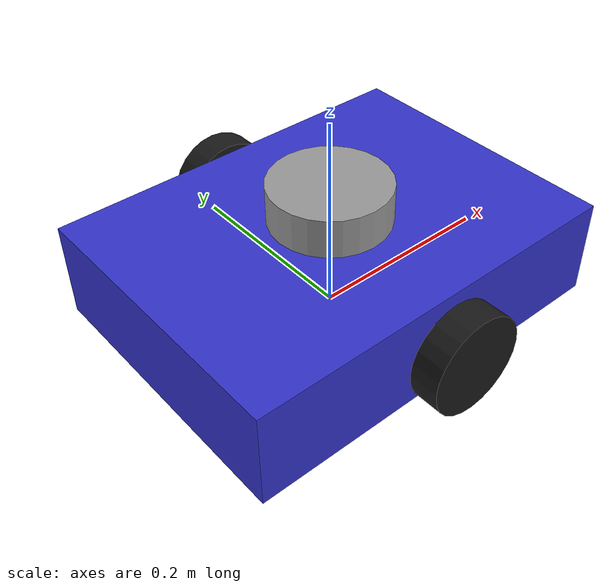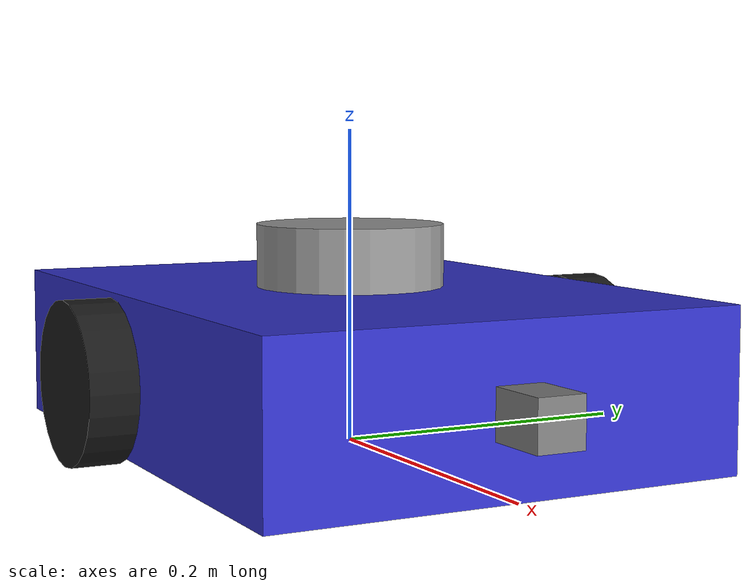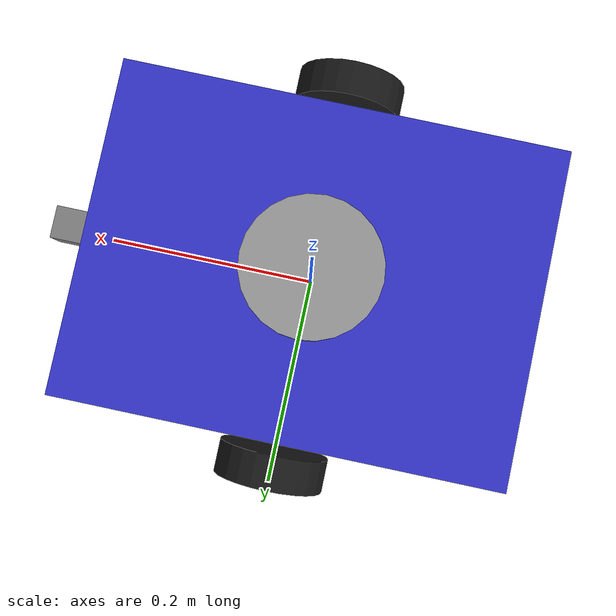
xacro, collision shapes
<?xml version="1.0"?>
<robot name="my_robot" xmlns:xacro="http://www.ros.org/wiki/xacro">
  <xacro:include filename="$(find my_robot_description)/urdf/robot.gazebo.xacro"/>

  <!-- ===================== ARGUMENTS ===================== -->
  <xacro:arg name="mesh_path" default="package://my_robot_description/meshes/"/>

  <!-- ===================== PROPERTIES ===================== -->
  <xacro:property name="base_length" value="0.4"/>
  <xacro:property name="base_width" value="0.3"/>
  <xacro:property name="base_height" value="0.1"/>
  <xacro:property name="wheel_radius" value="0.05"/>
  <xacro:property name="wheel_length" value="0.03"/>
  <xacro:property name="wheel_offset_x" value="0.1"/>
  <xacro:property name="wheel_offset_y" value="0.175"/>
  <xacro:property name="caster_radius" value="0.03"/>
  <xacro:property name="caster_length" value="0.02"/>

  <!-- ===================== BASE FOOTPRINT ===================== -->
  <link name="base_footprint"/>

  <joint name="base_joint" type="fixed">
    <parent link="base_footprint"/>
    <child link="base_link"/>
    <origin xyz="0 0 ${wheel_radius}" rpy="0 0 0"/>
  </joint>

  <!-- ===================== BASE LINK ===================== -->
  <link name="base_link">
    <visual>
      <origin xyz="0 0 0" rpy="0 0 0"/>
      <geometry>
        <box size="${base_length} ${base_width} ${base_height}"/>
      </geometry>
      <material name="body_blue">
        <color rgba="0.2 0.2 0.8 1.0"/>
      </material>
    </visual>
    <collision>
      <origin xyz="0 0 0" rpy="0 0 0"/>
      <geometry>
        <box size="${base_length} ${base_width} ${base_height}"/>
      </geometry>
    </collision>
    <inertial>
      <mass value="2.0"/>
      <origin xyz="0 0 0" rpy="0 0 0"/>
      <inertia ixx="0.01" ixy="0.0" ixz="0.0"
               iyy="0.02" iyz="0.0"
               izz="0.02"/>
    </inertial>
  </link>

  <!-- ===================== WHEEL MACRO ===================== -->
  <xacro:macro name="wheel" params="prefix reflect">
    <link name="${prefix}_wheel">
      <visual>
        <origin xyz="0 0 0" rpy="1.5708 0 0"/>
        <geometry>
          <cylinder radius="${wheel_radius}" length="${wheel_length}"/>
        </geometry>
        <material name="wheel_black">
          <color rgba="0.1 0.1 0.1 1.0"/>
        </material>
      </visual>
      <collision>
        <origin xyz="0 0 0" rpy="1.5708 0 0"/>
        <geometry>
          <cylinder radius="${wheel_radius}" length="${wheel_length}"/>
        </geometry>
      </collision>
      <inertial>
        <mass value="0.2"/>
        <origin xyz="0 0 0" rpy="0 0 0"/>
        <inertia ixx="0.0002" ixy="0.0" ixz="0.0"
                 iyy="0.0002" iyz="0.0"
                 izz="0.0002"/>
      </inertial>
    </link>

    <joint name="${prefix}_wheel_joint" type="continuous">
      <parent link="base_link"/>
      <child link="${prefix}_wheel"/>
      <origin xyz="0 ${reflect*wheel_offset_y} 0" rpy="0 0 0"/>
      <axis xyz="0 1 0"/>
    </joint>
  </xacro:macro>

  <xacro:wheel prefix="left" reflect="1"/>
  <xacro:wheel prefix="right" reflect="-1"/>

  <!-- ===================== CASTER WHEEL ===================== -->
  <link name="caster_wheel">
    <visual>
      <origin xyz="0 0 0.02" rpy="0 0 0"/>
      <geometry>
        <sphere radius="0.03"/>
      </geometry>
      <material name="caster_gray">
        <color rgba="0.4 0.4 0.4 1.0"/>
      </material>
    </visual>
    <collision>
      <origin xyz="0 0 0" rpy="0 0 0"/>
      <geometry>
        <sphere radius="0.03"/>
      </geometry>
    </collision>
    <inertial>
      <mass value="0.1"/>
      <origin xyz="0 0 0" rpy="0 0 0"/>
      <inertia ixx="0.00005" ixy="0.0" ixz="0.0"
               iyy="0.00005" iyz="0.0"
               izz="0.00005"/>
    </inertial>
  </link>

  <joint name="caster_joint" type="fixed">
    <parent link="base_link"/>
    <child link="caster_wheel"/>
    <origin xyz="0.15 0 -0.02" rpy="0 0 0"/>
  </joint>

  <!-- ===================== LIDAR LINK ===================== -->
  <link name="lidar_link">
    <visual>
      <origin xyz="0 0 0" rpy="0 0 0"/>
      <geometry>
        <mesh filename="$(arg mesh_path)lidar.STL"/>
      </geometry>
      <material name="lidar_gray">
        <color rgba="0.6 0.6 0.6 1.0"/>
      </material>
    </visual>
    <collision>
      <origin xyz="0 0 0" rpy="0 0 0"/>
      <geometry>
        <cylinder radius="0.06" length="0.04"/>
      </geometry>
    </collision>
    <inertial>
      <mass value="0.2"/>
      <origin xyz="0 0 0" rpy="0 0 0"/>
      <inertia ixx="0.0001" ixy="0.0" ixz="0.0"
               iyy="0.0001" iyz="0.0"
               izz="0.0001"/>
    </inertial>
  </link>

  <joint name="lidar_joint" type="fixed">
    <parent link="base_link"/>
    <child link="lidar_link"/>
    <origin xyz="0 0 0.07" rpy="0 0 0"/>
  </joint>

  <!-- ===================== CAMERA LINK ===================== -->
  <link name="camera_link">
    <visual>
      <origin xyz="0 0 0" rpy="0 0 0"/>
      <geometry>
        <mesh filename="$(arg mesh_path)zed.stl"/>
      </geometry>
      <material name="camera_black">
        <color rgba="0.5 0.5 0.5 1.0"/>
      </material>
    </visual>
    <collision>
      <origin xyz="0 0 0" rpy="0 0 0"/>
      <geometry>
        <box size="0.08 0.03 0.03"/>
      </geometry>
    </collision>
    <inertial>
      <mass value="0.1"/>
      <origin xyz="0 0 0" rpy="0 0 0"/>
      <inertia ixx="0.00005" ixy="0.0" ixz="0.0"
               iyy="0.00005" iyz="0.0"
               izz="0.00005"/>
    </inertial>
  </link>

  <joint name="camera_joint" type="fixed">
    <parent link="base_link"/>
    <child link="camera_link"/>
    <origin xyz="0.2 0 0" rpy="0 0 0"/>
  </joint>

  <!-- ===================== CAMERA OPTICAL LINK ===================== -->
  <link name="camera_optical_link"/>

  <joint name="camera_optical_joint" type="fixed">
    <parent link="camera_link"/>
    <child link="camera_optical_link"/>
    <origin xyz="0 0 0" rpy="-1.5708 0 -1.5708"/>
  </joint>

</robot>
